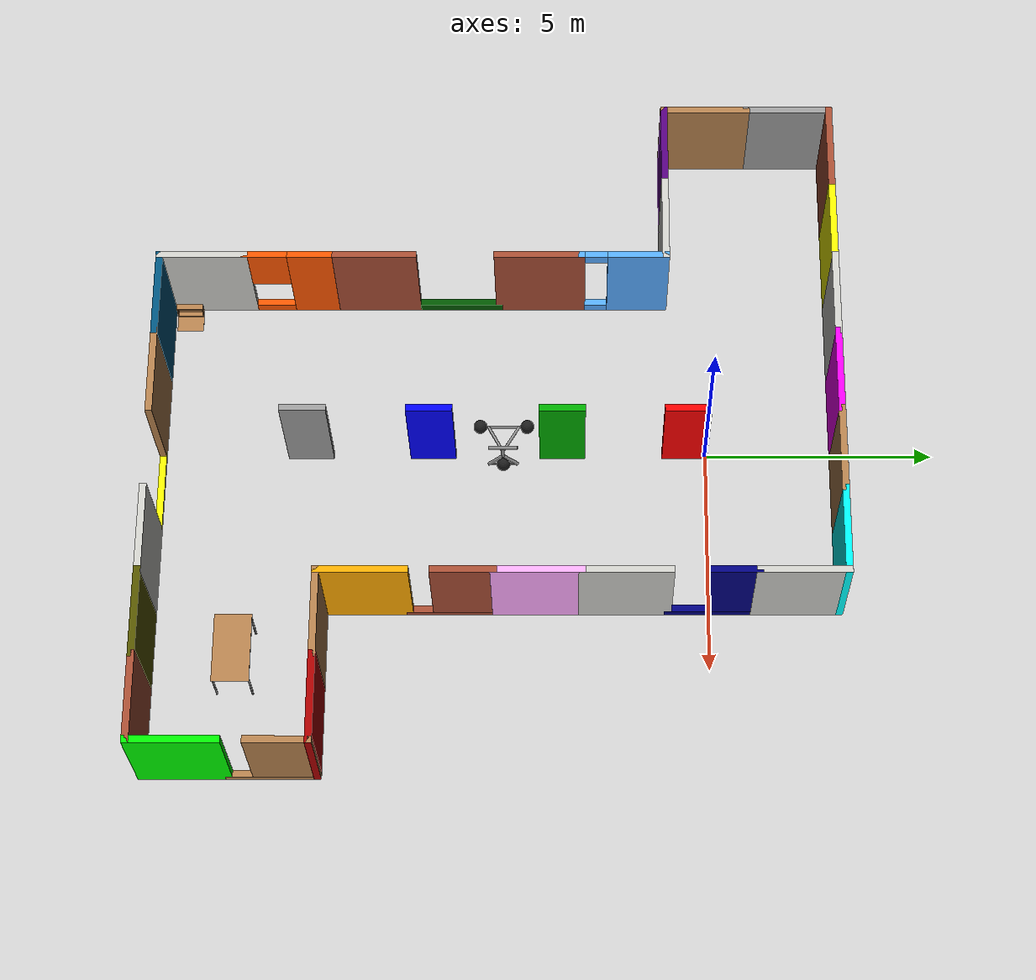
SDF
<sdf version="1.6">
 <world name="default">
  <light name="sun" type="directional">
   <pose>0 0 10 0 -0 0</pose>
   <diffuse>0.8 0.8 0.8 1</diffuse>
   <specular>0.2 0.2 0.2 1</specular>
   <attenuation>
    <range>1000</range>
    <constant>0.9</constant>
    <linear>0.01</linear>
    <quadratic>0.001</quadratic>
   </attenuation>
   <direction>-0.5 0.1 -0.9</direction>
  </light>
  <model name="ground_plane">
   <static>1</static>
   <link name="link">
    <collision name="collision">
     <geometry><plane><normal>0 0 1</normal><size>100 100</size></plane></geometry>
     <surface>
      <contact><collide_bitmask>65535</collide_bitmask></contact>
      <friction><ode><mu>100</mu><mu2>50</mu2></ode></friction>
     </surface>
    </collision>
    <visual name="visual">
     <cast_shadows>0</cast_shadows>
     <geometry><plane><normal>0 0 1</normal><size>100 100</size></plane></geometry>
     <material>
      <script><uri>file://media/materials/scripts/gazebo.material</uri><name>Gazebo/Grey</name></script>
     </material>
    </visual>
   </link>
  </model>
  <gravity>0 0 -9.8</gravity>
  <magnetic_field>6e-06 2.3e-05 -4.2e-05</magnetic_field>
  <atmosphere type="adiabatic"/>
  <physics name="default_physics" default="0" type="ode">
   <max_step_size>0.001</max_step_size>
   <real_time_factor>1</real_time_factor>
   <real_time_update_rate>1000</real_time_update_rate>
  </physics>
  <scene><ambient>0.4 0.4 0.4 1</ambient><background>0.7 0.7 0.7 1</background><shadows>1</shadows></scene>
  <spherical_coordinates>
   <surface_model>EARTH_WGS84</surface_model>
   <latitude_deg>0</latitude_deg>
   <longitude_deg>0</longitude_deg>
   <elevation>0</elevation>
   <heading_deg>0</heading_deg>
  </spherical_coordinates>
  <model name="funhouse">
   <pose>-0.04 -4.58 0 0 -0 0</pose>
   <link name="Wall_10">
    <collision name="Wall_10_Collision">
     <geometry><box><size>2 0.15 2.5</size></box></geometry>
     <pose>0 0 1.25 0 -0 0</pose>
    </collision>
    <visual name="Wall_10_Visual">
     <pose>0 0 1.25 0 -0 0</pose>
     <geometry><box><size>2 0.15 2.5</size></box></geometry>
     <material>
      <script><uri>file://media/materials/scripts/gazebo.material</uri><name>Gazebo/Bricks</name></script>
      <ambient>1 1 1 1</ambient>
     </material>
     <meta><layer>0</layer></meta>
    </visual>
    <pose>-3.7 -2.775 0 0 0 -1.5708</pose>
   </link>
   <link name="Wall_11">
    <pose>-3.7 -4.625 0 0 0 -1.5708</pose>
    <visual name="Wall_11_Visual_0">
     <pose>-0.504071 0 1.25 0 -0 0</pose>
     <geometry><box><size>0.991858 0.15 2.5</size></box></geometry>
     <material>
      <script><uri>file://media/materials/scripts/gazebo.material</uri><name>Gazebo/Grey</name></script>
      <ambient>1 0.333333 0 1</ambient>
     </material>
     <meta><layer>0</layer></meta>
    </visual>
    <collision name="Wall_11_Collision_0">
     <geometry><box><size>0.991858 0.15 2.5</size></box></geometry>
     <pose>-0.504071 0 1.25 0 -0 0</pose>
    </collision>
    <visual name="Wall_11_Visual_1">
     <pose>0.495929 0 0.125 0 -0 0</pose>
     <geometry><box><size>1.00814 0.15 0.25</size></box></geometry>
     <material>
      <script><uri>file://media/materials/scripts/gazebo.material</uri><name>Gazebo/Grey</name></script>
      <ambient>1 0.333333 0 1</ambient>
     </material>
     <meta><layer>0</layer></meta>
    </visual>
    <collision name="Wall_11_Collision_1">
     <geometry><box><size>1.00814 0.15 0.25</size></box></geometry>
     <pose>0.495929 0 0.125 0 -0 0</pose>
    </collision>
    <visual name="Wall_11_Visual_2">
     <pose>0.995929 0 1.375 0 -0 0</pose>
     <geometry><box><size>0.008142 0.15 2.25</size></box></geometry>
     <material>
      <script><uri>file://media/materials/scripts/gazebo.material</uri><name>Gazebo/Grey</name></script>
      <ambient>1 0.333333 0 1</ambient>
     </material>
     <meta><layer>0</layer></meta>
    </visual>
    <collision name="Wall_11_Collision_2">
     <geometry><box><size>0.008142 0.15 2.25</size></box></geometry>
     <pose>0.995929 0 1.375 0 -0 0</pose>
    </collision>
    <visual name="Wall_11_Visual_3">
     <pose>0.491858 0 1.875 0 -0 0</pose>
     <geometry><box><size>1 0.15 1.25</size></box></geometry>
     <material>
      <script><uri>file://media/materials/scripts/gazebo.material</uri><name>Gazebo/Grey</name></script>
      <ambient>1 0.333333 0 1</ambient>
     </material>
     <meta><layer>0</layer></meta>
    </visual>
    <collision name="Wall_11_Collision_3">
     <geometry><box><size>1 0.15 1.25</size></box></geometry>
     <pose>0.491858 0 1.875 0 -0 0</pose>
    </collision>
   </link>
   <link name="Wall_13">
    <collision name="Wall_13_Collision">
     <geometry><box><size>2 0.15 2.5</size></box></geometry>
     <pose>0 0 1.25 0 -0 0</pose>
    </collision>
    <visual name="Wall_13_Visual">
     <pose>0 0 1.25 0 -0 0</pose>
     <geometry><box><size>2 0.15 2.5</size></box></geometry>
     <material>
      <script><uri>file://media/materials/scripts/gazebo.material</uri><name>Gazebo/CeilingTiled</name></script>
      <ambient>1 1 1 1</ambient>
     </material>
     <meta><layer>0</layer></meta>
    </visual>
    <pose>-3.7 -6.475 0 0 0 -1.5708</pose>
   </link>
   <link name="Wall_14">
    <collision name="Wall_14_Collision">
     <geometry><box><size>2 0.15 2.5</size></box></geometry>
     <pose>0 0 1.25 0 -0 0</pose>
    </collision>
    <visual name="Wall_14_Visual">
     <pose>0 0 1.25 0 -0 0</pose>
     <geometry><box><size>2 0.15 2.5</size></box></geometry>
     <material>
      <script><uri>file://media/materials/scripts/gazebo.material</uri><name>Gazebo/Grey</name></script>
      <ambient>0 0.333333 0.498039 1</ambient>
     </material>
     <meta><layer>0</layer></meta>
    </visual>
    <pose>-2.775 -7.4 0 0 -0 0</pose>
   </link>
   <link name="Wall_15">
    <collision name="Wall_15_Collision">
     <geometry><box><size>2 0.15 2.5</size></box></geometry>
     <pose>0 0 1.25 0 -0 0</pose>
    </collision>
    <visual name="Wall_15_Visual">
     <pose>0 0 1.25 0 -0 0</pose>
     <geometry><box><size>2 0.15 2.5</size></box></geometry>
     <material>
      <script><uri>file://media/materials/scripts/gazebo.material</uri><name>Gazebo/Wood</name></script>
      <ambient>1 1 1 1</ambient>
     </material>
     <meta><layer>0</layer></meta>
    </visual>
    <pose>-0.925 -7.4 0 0 -0 0</pose>
   </link>
   <link name="Wall_18">
    <pose>0.925 -7.4 0 0 -0 0</pose>
    <visual name="Wall_18_Visual_0">
     <pose>0 0 0.05 0 -0 0</pose>
     <geometry><box><size>2 0.15 0.1</size></box></geometry>
     <material>
      <script><uri>file://media/materials/scripts/gazebo.material</uri><name>Gazebo/Grey</name></script>
      <ambient>1 1 0 1</ambient>
     </material>
     <meta><layer>0</layer></meta>
    </visual>
    <collision name="Wall_18_Collision_0">
     <geometry><box><size>2 0.15 0.1</size></box></geometry>
     <pose>0 0 0.05 0 -0 0</pose>
    </collision>
   </link>
   <link name="Wall_19">
    <collision name="Wall_19_Collision">
     <geometry><box><size>2 0.15 2.5</size></box></geometry>
     <pose>0 0 1.25 0 -0 0</pose>
    </collision>
    <visual name="Wall_19_Visual">
     <pose>0 0 1.25 0 -0 0</pose>
     <geometry><box><size>2 0.15 2.5</size></box></geometry>
     <material>
      <script><uri>file://media/materials/scripts/gazebo.material</uri><name>Gazebo/CeilingTiled</name></script>
      <ambient>1 1 1 1</ambient>
     </material>
     <meta><layer>0</layer></meta>
    </visual>
    <pose>2.775 -7.4 0 0 -0 0</pose>
   </link>
   <link name="Wall_22">
    <collision name="Wall_22_Collision">
     <geometry><box><size>2 0.15 2.5</size></box></geometry>
     <pose>0 0 1.25 0 -0 0</pose>
    </collision>
    <visual name="Wall_22_Visual">
     <pose>0 0 1.25 0 -0 0</pose>
     <geometry><box><size>2 0.15 2.5</size></box></geometry>
     <material>
      <script><uri>file://media/materials/scripts/gazebo.material</uri><name>Gazebo/Grey</name></script>
      <ambient>1 0.666667 0 1</ambient>
     </material>
     <meta><layer>0</layer></meta>
    </visual>
    <pose>3.7 -2.775 0 0 -0 1.5708</pose>
   </link>
   <link name="Wall_23">
    <pose>3.7 -0.925 0 0 -0 1.5708</pose>
    <visual name="Wall_23_Visual_0">
     <pose>0 0 0.075 0 -0 0</pose>
     <geometry><box><size>2 0.15 0.15</size></box></geometry>
     <material>
      <script><uri>file://media/materials/scripts/gazebo.material</uri><name>Gazebo/Bricks</name></script>
      <ambient>1 1 1 1</ambient>
     </material>
     <meta><layer>0</layer></meta>
    </visual>
    <collision name="Wall_23_Collision_0">
     <geometry><box><size>2 0.15 0.15</size></box></geometry>
     <pose>0 0 0.075 0 -0 0</pose>
    </collision>
    <visual name="Wall_23_Visual_1">
     <pose>0.290707 0 1.325 0 -0 0</pose>
     <geometry><box><size>1.41859 0.15 2.35</size></box></geometry>
     <material>
      <script><uri>file://media/materials/scripts/gazebo.material</uri><name>Gazebo/Bricks</name></script>
      <ambient>1 1 1 1</ambient>
     </material>
     <meta><layer>0</layer></meta>
    </visual>
    <collision name="Wall_23_Collision_1">
     <geometry><box><size>1.41859 0.15 2.35</size></box></geometry>
     <pose>0.290707 0 1.325 0 -0 0</pose>
    </collision>
   </link>
   <link name="Wall_24">
    <collision name="Wall_24_Collision">
     <geometry><box><size>2 0.15 2.5</size></box></geometry>
     <pose>0 0 1.25 0 -0 0</pose>
    </collision>
    <visual name="Wall_24_Visual">
     <pose>0 0 1.25 0 -0 0</pose>
     <geometry><box><size>2 0.15 2.5</size></box></geometry>
     <material>
      <script><uri>file://media/materials/scripts/gazebo.material</uri><name>Gazebo/Grey</name></script>
      <ambient>1 0.666667 1 1</ambient>
     </material>
     <meta><layer>0</layer></meta>
    </visual>
    <pose>3.7 0.925 0 0 -0 1.5708</pose>
   </link>
   <link name="Wall_25">
    <collision name="Wall_25_Collision">
     <geometry><box><size>2 0.15 2.5</size></box></geometry>
     <pose>0 0 1.25 0 -0 0</pose>
    </collision>
    <visual name="Wall_25_Visual">
     <pose>0 0 1.25 0 -0 0</pose>
     <geometry><box><size>2 0.15 2.5</size></box></geometry>
     <material>
      <script><uri>file://media/materials/scripts/gazebo.material</uri><name>Gazebo/CeilingTiled</name></script>
      <ambient>1 1 1 1</ambient>
     </material>
     <meta><layer>0</layer></meta>
    </visual>
    <pose>3.7 2.775 0 0 -0 1.5708</pose>
   </link>
   <link name="Wall_26">
    <pose>3.7 4.625 0 0 -0 1.5708</pose>
    <visual name="Wall_26_Visual_0">
     <pose>0 0 0.11 0 -0 0</pose>
     <geometry><box><size>2 0.15 0.22</size></box></geometry>
     <material>
      <script><uri>file://media/materials/scripts/gazebo.material</uri><name>Gazebo/Grey</name></script>
      <ambient>0 0 0.498039 1</ambient>
     </material>
     <meta><layer>0</layer></meta>
    </visual>
    <collision name="Wall_26_Collision_0">
     <geometry><box><size>2 0.15 0.22</size></box></geometry>
     <pose>0 0 0.11 0 -0 0</pose>
    </collision>
    <visual name="Wall_26_Visual_1">
     <pose>0.435925 0 1.36 0 -0 0</pose>
     <geometry><box><size>1.12815 0.15 2.28</size></box></geometry>
     <material>
      <script><uri>file://media/materials/scripts/gazebo.material</uri><name>Gazebo/Grey</name></script>
      <ambient>0 0 0.498039 1</ambient>
     </material>
     <meta><layer>0</layer></meta>
    </visual>
    <collision name="Wall_26_Collision_1">
     <geometry><box><size>1.12815 0.15 2.28</size></box></geometry>
     <pose>0.435925 0 1.36 0 -0 0</pose>
    </collision>
   </link>
   <link name="Wall_27">
    <collision name="Wall_27_Collision">
     <geometry><box><size>2 0.15 2.5</size></box></geometry>
     <pose>0 0 1.25 0 -0 0</pose>
    </collision>
    <visual name="Wall_27_Visual">
     <pose>0 0 1.25 0 -0 0</pose>
     <geometry><box><size>2 0.15 2.5</size></box></geometry>
     <material>
      <script><uri>file://media/materials/scripts/gazebo.material</uri><name>Gazebo/CeilingTiled</name></script>
      <ambient>1 1 1 1</ambient>
     </material>
     <meta><layer>0</layer></meta>
    </visual>
    <pose>3.7 6.475 0 0 -0 1.5708</pose>
   </link>
   <link name="Wall_28">
    <collision name="Wall_28_Collision">
     <geometry><box><size>2 0.15 2.5</size></box></geometry>
     <pose>0 0 1.25 0 -0 0</pose>
    </collision>
    <visual name="Wall_28_Visual">
     <pose>0 0 1.25 0 -0 0</pose>
     <geometry><box><size>2 0.15 2.5</size></box></geometry>
     <material>
      <script><uri>file://media/materials/scripts/gazebo.material</uri><name>Gazebo/Grey</name></script>
      <ambient>0 1 1 1</ambient>
     </material>
     <meta><layer>0</layer></meta>
    </visual>
    <pose>2.775 7.4 0 0 -0 3.14159</pose>
   </link>
   <link name="Wall_29">
    <collision name="Wall_29_Collision">
     <geometry><box><size>2 0.15 2.5</size></box></geometry>
     <pose>0 0 1.25 0 -0 0</pose>
    </collision>
    <visual name="Wall_29_Visual">
     <pose>0 0 1.25 0 -0 0</pose>
     <geometry><box><size>2 0.15 2.5</size></box></geometry>
     <material>
      <script><uri>file://media/materials/scripts/gazebo.material</uri><name>Gazebo/Wood</name></script>
      <ambient>1 1 1 1</ambient>
     </material>
     <meta><layer>0</layer></meta>
    </visual>
    <pose>0.925 7.4 0 0 -0 3.14159</pose>
   </link>
   <link name="Wall_3">
    <collision name="Wall_3_Collision">
     <geometry><box><size>2 0.15 2.5</size></box></geometry>
     <pose>0 0 1.25 0 -0 0</pose>
    </collision>
    <visual name="Wall_3_Visual">
     <pose>0 0 1.25 0 -0 0</pose>
     <geometry><box><size>2 0.15 2.5</size></box></geometry>
     <material>
      <script><uri>file://media/materials/scripts/gazebo.material</uri><name>Gazebo/Grey</name></script>
      <ambient>1 0 1 1</ambient>
     </material>
     <meta><layer>0</layer></meta>
    </visual>
    <pose>-0.925 7.4 0 0 -0 3.14159</pose>
   </link>
   <link name="Wall_31">
    <collision name="Wall_31_Collision">
     <geometry><box><size>1 0.15 2.5</size></box></geometry>
     <pose>0 0 1.25 0 -0 0</pose>
    </collision>
    <visual name="Wall_31_Visual">
     <pose>0 0 1.25 0 -0 0</pose>
     <geometry><box><size>1 0.15 2.5</size></box></geometry>
     <material>
      <script><uri>file://media/materials/scripts/gazebo.material</uri><name>Gazebo/Grey</name></script>
      <ambient>1 1 1 1</ambient>
     </material>
     <meta><layer>0</layer></meta>
    </visual>
    <pose>0 -4.125 0 0 -0 1.5708</pose>
   </link>
   <link name="Wall_33">
    <collision name="Wall_33_Collision">
     <geometry><box><size>1 0.15 2.5</size></box></geometry>
     <pose>0 0 1.25 0 -0 0</pose>
    </collision>
    <visual name="Wall_33_Visual">
     <pose>0 0 1.25 0 -0 0</pose>
     <geometry><box><size>1 0.15 2.5</size></box></geometry>
     <material>
      <script><uri>file://media/materials/scripts/gazebo.material</uri><name>Gazebo/Grey</name></script>
      <ambient>0 0 1 1</ambient>
     </material>
     <meta><layer>0</layer></meta>
    </visual>
    <pose>0 -1.425 0 0 -0 1.5708</pose>
   </link>
   <link name="Wall_35">
    <collision name="Wall_35_Collision">
     <geometry><box><size>1 0.15 2.5</size></box></geometry>
     <pose>0 0 1.25 0 -0 0</pose>
    </collision>
    <visual name="Wall_35_Visual">
     <pose>0 0 1.25 0 -0 0</pose>
     <geometry><box><size>1 0.15 2.5</size></box></geometry>
     <material>
      <script><uri>file://media/materials/scripts/gazebo.material</uri><name>Gazebo/Grey</name></script>
      <ambient>1 0 0 1</ambient>
     </material>
     <meta><layer>0</layer></meta>
    </visual>
    <pose>0 4.125 0 0 0 -1.5708</pose>
   </link>
   <link name="Wall_37">
    <collision name="Wall_37_Collision">
     <geometry><box><size>1 0.15 2.5</size></box></geometry>
     <pose>0 0 1.25 0 -0 0</pose>
    </collision>
    <visual name="Wall_37_Visual">
     <pose>0 0 1.25 0 -0 0</pose>
     <geometry><box><size>1 0.15 2.5</size></box></geometry>
     <material>
      <script><uri>file://media/materials/scripts/gazebo.material</uri><name>Gazebo/Grey</name></script>
      <ambient>0 0.666667 0 1</ambient>
     </material>
     <meta><layer>0</layer></meta>
    </visual>
    <pose>0 1.425 0 0 0 -1.5708</pose>
   </link>
   <link name="Wall_39">
    <collision name="Wall_39_Collision">
     <geometry><box><size>2 0.15 2.5</size></box></geometry>
     <pose>0 0 1.25 0 -0 0</pose>
    </collision>
    <visual name="Wall_39_Visual">
     <pose>0 0 1.25 0 -0 0</pose>
     <geometry><box><size>2 0.15 2.5</size></box></geometry>
     <material>
      <script><uri>file://media/materials/scripts/gazebo.material</uri><name>Gazebo/Grey</name></script>
      <ambient>0.333333 0.333333 0 1</ambient>
     </material>
     <meta><layer>0</layer></meta>
    </visual>
    <pose>4.625 -7.4 0 0 -0 0</pose>
   </link>
   <link name="Wall_4">
    <collision name="Wall_4_Collision">
     <geometry><box><size>2 0.15 2.5</size></box></geometry>
     <pose>0 0 1.25 0 -0 0</pose>
    </collision>
    <visual name="Wall_4_Visual">
     <pose>0 0 1.25 0 -0 0</pose>
     <geometry><box><size>2 0.15 2.5</size></box></geometry>
     <material>
      <script><uri>file://media/materials/scripts/gazebo.material</uri><name>Gazebo/CeilingTiled</name></script>
      <ambient>1 1 1 1</ambient>
     </material>
     <meta><layer>0</layer></meta>
    </visual>
    <pose>-2.775 7.4 0 0 -0 3.14159</pose>
   </link>
   <link name="Wall_40">
    <collision name="Wall_40_Collision">
     <geometry><box><size>2 0.15 2.5</size></box></geometry>
     <pose>0 0 1.25 0 -0 0</pose>
    </collision>
    <visual name="Wall_40_Visual">
     <pose>0 0 1.25 0 -0 0</pose>
     <geometry><box><size>2 0.15 2.5</size></box></geometry>
     <material>
      <script><uri>file://media/materials/scripts/gazebo.material</uri><name>Gazebo/Bricks</name></script>
      <ambient>1 1 1 1</ambient>
     </material>
     <meta><layer>0</layer></meta>
    </visual>
    <pose>6.475 -7.4 0 0 -0 0</pose>
   </link>
   <link name="Wall_41">
    <collision name="Wall_41_Collision">
     <geometry><box><size>2 0.15 2.5</size></box></geometry>
     <pose>0 0 1.25 0 -0 0</pose>
    </collision>
    <visual name="Wall_41_Visual">
     <pose>0 0 1.25 0 -0 0</pose>
     <geometry><box><size>2 0.15 2.5</size></box></geometry>
     <material>
      <script><uri>file://media/materials/scripts/gazebo.material</uri><name>Gazebo/Grey</name></script>
      <ambient>0 1 0 1</ambient>
     </material>
     <meta><layer>0</layer></meta>
    </visual>
    <pose>7.4 -6.475 0 0 -0 1.5708</pose>
   </link>
   <link name="Wall_42">
    <pose>7.4 -4.625 0 0 -0 1.5708</pose>
    <visual name="Wall_42_Visual_0">
     <pose>0 0 0.1 0 -0 0</pose>
     <geometry><box><size>2 0.15 0.2</size></box></geometry>
     <material>
      <script><uri>file://media/materials/scripts/gazebo.material</uri><name>Gazebo/Wood</name></script>
      <ambient>1 1 1 1</ambient>
     </material>
     <meta><layer>0</layer></meta>
    </visual>
    <collision name="Wall_42_Collision_0">
     <geometry><box><size>2 0.15 0.2</size></box></geometry>
     <pose>0 0 0.1 0 -0 0</pose>
    </collision>
    <visual name="Wall_42_Visual_1">
     <pose>0.289974 0 1.35 0 -0 0</pose>
     <geometry><box><size>1.42005 0.15 2.3</size></box></geometry>
     <material>
      <script><uri>file://media/materials/scripts/gazebo.material</uri><name>Gazebo/Wood</name></script>
      <ambient>1 1 1 1</ambient>
     </material>
     <meta><layer>0</layer></meta>
    </visual>
    <collision name="Wall_42_Collision_1">
     <geometry><box><size>1.42005 0.15 2.3</size></box></geometry>
     <pose>0.289974 0 1.35 0 -0 0</pose>
    </collision>
   </link>
   <link name="Wall_43">
    <collision name="Wall_43_Collision">
     <geometry><box><size>2 0.15 2.5</size></box></geometry>
     <pose>0 0 1.25 0 -0 0</pose>
    </collision>
    <visual name="Wall_43_Visual">
     <pose>0 0 1.25 0 -0 0</pose>
     <geometry><box><size>2 0.15 2.5</size></box></geometry>
     <material>
      <script><uri>file://media/materials/scripts/gazebo.material</uri><name>Gazebo/Grey</name></script>
      <ambient>0.666667 0 0 1</ambient>
     </material>
     <meta><layer>0</layer></meta>
    </visual>
    <pose>6.475 -3.7 0 0 -0 3.14159</pose>
   </link>
   <link name="Wall_44">
    <collision name="Wall_44_Collision">
     <geometry><box><size>2 0.15 2.5</size></box></geometry>
     <pose>0 0 1.25 0 -0 0</pose>
    </collision>
    <visual name="Wall_44_Visual">
     <pose>0 0 1.25 0 -0 0</pose>
     <geometry><box><size>2 0.15 2.5</size></box></geometry>
     <material>
      <script><uri>file://media/materials/scripts/gazebo.material</uri><name>Gazebo/Wood</name></script>
      <ambient>1 1 1 1</ambient>
     </material>
     <meta><layer>0</layer></meta>
    </visual>
    <pose>4.625 -3.7 0 0 -0 3.14159</pose>
   </link>
   <link name="Wall_46">
    <collision name="Wall_46_Collision">
     <geometry><box><size>2 0.15 2.5</size></box></geometry>
     <pose>0 0 1.25 0 -0 0</pose>
    </collision>
    <visual name="Wall_46_Visual">
     <pose>0 0 1.25 0 -0 0</pose>
     <geometry><box><size>2 0.15 2.5</size></box></geometry>
     <material>
      <script><uri>file://media/materials/scripts/gazebo.material</uri><name>Gazebo/Grey</name></script>
      <ambient>1 1 0 1</ambient>
     </material>
     <meta><layer>0</layer></meta>
    </visual>
    <pose>-4.625 7.4 0 0 -0 3.14159</pose>
   </link>
   <link name="Wall_47">
    <collision name="Wall_47_Collision">
     <geometry><box><size>2 0.15 2.5</size></box></geometry>
     <pose>0 0 1.25 0 -0 0</pose>
    </collision>
    <visual name="Wall_47_Visual">
     <pose>0 0 1.25 0 -0 0</pose>
     <geometry><box><size>2 0.15 2.5</size></box></geometry>
     <material>
      <script><uri>file://media/materials/scripts/gazebo.material</uri><name>Gazebo/Bricks</name></script>
      <ambient>1 1 1 1</ambient>
     </material>
     <meta><layer>0</layer></meta>
    </visual>
    <pose>-6.475 7.4 0 0 -0 3.14159</pose>
   </link>
   <link name="Wall_48">
    <collision name="Wall_48_Collision">
     <geometry><box><size>2 0.15 2.5</size></box></geometry>
     <pose>0 0 1.25 0 -0 0</pose>
    </collision>
    <visual name="Wall_48_Visual">
     <pose>0 0 1.25 0 -0 0</pose>
     <geometry><box><size>2 0.15 2.5</size></box></geometry>
     <material>
      <script><uri>file://media/materials/scripts/gazebo.material</uri><name>Gazebo/Grey</name></script>
      <ambient>0 0 0 1</ambient>
     </material>
     <meta><layer>0</layer></meta>
    </visual>
    <pose>-7.4 6.475 0 0 0 -1.5708</pose>
   </link>
   <link name="Wall_49">
    <collision name="Wall_49_Collision">
     <geometry><box><size>2 0.15 2.5</size></box></geometry>
     <pose>0 0 1.25 0 -0 0</pose>
    </collision>
    <visual name="Wall_49_Visual">
     <pose>0 0 1.25 0 -0 0</pose>
     <geometry><box><size>2 0.15 2.5</size></box></geometry>
     <material>
      <script><uri>file://media/materials/scripts/gazebo.material</uri><name>Gazebo/Wood</name></script>
      <ambient>1 1 1 1</ambient>
     </material>
     <meta><layer>0</layer></meta>
    </visual>
    <pose>-7.4 4.625 0 0 0 -1.5708</pose>
   </link>
   <link name="Wall_50">
    <collision name="Wall_50_Collision">
     <geometry><box><size>2 0.15 2.5</size></box></geometry>
     <pose>0 0 1.25 0 -0 0</pose>
    </collision>
    <visual name="Wall_50_Visual">
     <pose>0 0 1.25 0 -0 0</pose>
     <geometry><box><size>2 0.15 2.5</size></box></geometry>
     <material>
      <script><uri>file://media/materials/scripts/gazebo.material</uri><name>Gazebo/Grey</name></script>
      <ambient>0.333333 0 0.498039 1</ambient>
     </material>
     <meta><layer>0</layer></meta>
    </visual>
    <pose>-6.475 3.7 0 0 -0 0</pose>
   </link>
   <link name="Wall_51">
    <collision name="Wall_51_Collision">
     <geometry><box><size>2 0.15 2.5</size></box></geometry>
     <pose>0 0 1.25 0 -0 0</pose>
    </collision>
    <visual name="Wall_51_Visual">
     <pose>0 0 1.25 0 -0 0</pose>
     <geometry><box><size>2 0.15 2.5</size></box></geometry>
     <material>
      <script><uri>file://media/materials/scripts/gazebo.material</uri><name>Gazebo/CeilingTiled</name></script>
      <ambient>1 1 1 1</ambient>
     </material>
     <meta><layer>0</layer></meta>
    </visual>
    <pose>-4.625 3.7 0 0 -0 0</pose>
   </link>
   <link name="Wall_7">
    <pose>-3.7 2.775 0 0 0 -1.5708</pose>
    <visual name="Wall_7_Visual_0">
     <pose>-0.322472 0 1.25 0 -0 0</pose>
     <geometry><box><size>1.35506 0.15 2.5</size></box></geometry>
     <material>
      <script><uri>file://media/materials/scripts/gazebo.material</uri><name>Gazebo/Grey</name></script>
      <ambient>0.333333 0.666667 1 1</ambient>
     </material>
     <meta><layer>0</layer></meta>
    </visual>
    <collision name="Wall_7_Collision_0">
     <geometry><box><size>1.35506 0.15 2.5</size></box></geometry>
     <pose>-0.322472 0 1.25 0 -0 0</pose>
    </collision>
    <visual name="Wall_7_Visual_1">
     <pose>0.677528 0 0.125 0 -0 0</pose>
     <geometry><box><size>0.644943 0.15 0.25</size></box></geometry>
     <material>
      <script><uri>file://media/materials/scripts/gazebo.material</uri><name>Gazebo/Grey</name></script>
      <ambient>0.333333 0.666667 1 1</ambient>
     </material>
     <meta><layer>0</layer></meta>
    </visual>
    <collision name="Wall_7_Collision_1">
     <geometry><box><size>0.644943 0.15 0.25</size></box></geometry>
     <pose>0.677528 0 0.125 0 -0 0</pose>
    </collision>
    <visual name="Wall_7_Visual_2">
     <pose>0.927528 0 1.375 0 -0 0</pose>
     <geometry><box><size>0.144943 0.15 2.25</size></box></geometry>
     <material>
      <script><uri>file://media/materials/scripts/gazebo.material</uri><name>Gazebo/Grey</name></script>
      <ambient>0.333333 0.666667 1 1</ambient>
     </material>
     <meta><layer>0</layer></meta>
    </visual>
    <collision name="Wall_7_Collision_2">
     <geometry><box><size>0.144943 0.15 2.25</size></box></geometry>
     <pose>0.927528 0 1.375 0 -0 0</pose>
    </collision>
    <visual name="Wall_7_Visual_3">
     <pose>0.605057 0 2.375 0 -0 0</pose>
     <geometry><box><size>0.5 0.15 0.25</size></box></geometry>
     <material>
      <script><uri>file://media/materials/scripts/gazebo.material</uri><name>Gazebo/Grey</name></script>
      <ambient>0.333333 0.666667 1 1</ambient>
     </material>
     <meta><layer>0</layer></meta>
    </visual>
    <collision name="Wall_7_Collision_3">
     <geometry><box><size>0.5 0.15 0.25</size></box></geometry>
     <pose>0.605057 0 2.375 0 -0 0</pose>
    </collision>
   </link>
   <link name="Wall_8">
    <collision name="Wall_8_Collision">
     <geometry><box><size>2 0.15 2.5</size></box></geometry>
     <pose>0 0 1.25 0 -0 0</pose>
    </collision>
    <visual name="Wall_8_Visual">
     <pose>0 0 1.25 0 -0 0</pose>
     <geometry><box><size>2 0.15 2.5</size></box></geometry>
     <material>
      <script><uri>file://media/materials/scripts/gazebo.material</uri><name>Gazebo/Bricks</name></script>
      <ambient>1 1 1 1</ambient>
     </material>
     <meta><layer>0</layer></meta>
    </visual>
    <pose>-3.7 0.925 0 0 0 -1.5708</pose>
   </link>
   <link name="Wall_9">
    <pose>-3.7 -0.925 0 0 0 -1.5708</pose>
    <visual name="Wall_9_Visual_0">
     <pose>0 0 0.125 0 -0 0</pose>
     <geometry><box><size>2 0.15 0.25</size></box></geometry>
     <material>
      <script><uri>file://media/materials/scripts/gazebo.material</uri><name>Gazebo/Grey</name></script>
      <ambient>0 0.333333 0 1</ambient>
     </material>
     <meta><layer>0</layer></meta>
    </visual>
    <collision name="Wall_9_Collision_0">
     <geometry><box><size>2 0.15 0.25</size></box></geometry>
     <pose>0 0 0.125 0 -0 0</pose>
    </collision>
   </link>
   <static>1</static>
  </model>
  <model name="table">
   <static>1</static>
   <link name="link">
    <collision name="surface">
     <pose>0 0 1 0 -0 0</pose>
     <geometry><box><size>1.5 0.8 0.03</size></box></geometry>
     <surface><friction><ode><mu>0.6</mu><mu2>0.6</mu2></ode></friction></surface>
    </collision>
    <visual name="visual1">
     <pose>0 0 1 0 -0 0</pose>
     <geometry><box><size>1.5 0.8 0.03</size></box></geometry>
     <material>
      <script><uri>file://media/materials/scripts/gazebo.material</uri><name>Gazebo/Wood</name></script>
     </material>
    </visual>
    <collision name="front_left_leg">
     <pose>0.68 0.38 0.5 0 -0 0</pose>
     <geometry><cylinder><radius>0.02</radius><length>1</length></cylinder></geometry>
    </collision>
    <visual name="front_left_leg">
     <pose>0.68 0.38 0.5 0 -0 0</pose>
     <geometry><cylinder><radius>0.02</radius><length>1</length></cylinder></geometry>
     <material>
      <script><uri>file://media/materials/scripts/gazebo.material</uri><name>Gazebo/Grey</name></script>
     </material>
    </visual>
    <collision name="front_right_leg">
     <pose>0.68 -0.38 0.5 0 -0 0</pose>
     <geometry><cylinder><radius>0.02</radius><length>1</length></cylinder></geometry>
    </collision>
    <visual name="front_right_leg">
     <pose>0.68 -0.38 0.5 0 -0 0</pose>
     <geometry><cylinder><radius>0.02</radius><length>1</length></cylinder></geometry>
     <material>
      <script><uri>file://media/materials/scripts/gazebo.material</uri><name>Gazebo/Grey</name></script>
     </material>
    </visual>
    <collision name="back_right_leg">
     <pose>-0.68 -0.38 0.5 0 -0 0</pose>
     <geometry><cylinder><radius>0.02</radius><length>1</length></cylinder></geometry>
    </collision>
    <visual name="back_right_leg">
     <pose>-0.68 -0.38 0.5 0 -0 0</pose>
     <geometry><cylinder><radius>0.02</radius><length>1</length></cylinder></geometry>
     <material>
      <script><uri>file://media/materials/scripts/gazebo.material</uri><name>Gazebo/Grey</name></script>
     </material>
    </visual>
    <collision name="back_left_leg">
     <pose>-0.68 0.38 0.5 0 -0 0</pose>
     <geometry><cylinder><radius>0.02</radius><length>1</length></cylinder></geometry>
    </collision>
    <visual name="back_left_leg">
     <pose>-0.68 0.38 0.5 0 -0 0</pose>
     <geometry><cylinder><radius>0.02</radius><length>1</length></cylinder></geometry>
     <material>
      <script><uri>file://media/materials/scripts/gazebo.material</uri><name>Gazebo/Grey</name></script>
     </material>
    </visual>
   </link>
   <pose>4.8525 -10.1191 0 0 -0 0</pose>
  </model>
  <model name="trisphere_cycle">
   <link name="frame">
    <pose>-0.408559 0 0.385023 0 -0.522021 0</pose>
    <inertial>
     <mass>10</mass>
     <inertia><ixx>0.228</ixx><iyy>0.743521</iyy><izz>0.965521</izz><ixy>0</ixy><ixz>0</ixz><iyz>0</iyz></inertia>
    </inertial>
    <collision name="axle_collision">
     <pose>-0.471335 0 0 1.5708 -0 0</pose>
     <geometry><cylinder><length>1.03923</length><radius>0.03</radius></cylinder></geometry>
    </collision>
    <visual name="axle_visual">
     <pose>-0.471335 0 0 1.5708 -0 0</pose>
     <geometry><cylinder><length>1.03923</length><radius>0.03</radius></cylinder></geometry>
     <material>
      <script><uri>file://media/materials/scripts/gazebo.material</uri><name>Gazebo/Grey</name></script>
     </material>
    </visual>
    <collision name="frame_left_collision">
     <pose>0 0.171552 0 -2.79253 1.57079 3.14159</pose>
     <geometry><cylinder><length>1.00317</length><radius>0.03</radius></cylinder></geometry>
    </collision>
    <visual name="frame_left_visual">
     <pose>0 0.171552 0 -2.79253 1.57079 3.14159</pose>
     <geometry><cylinder><length>1.00317</length><radius>0.03</radius></cylinder></geometry>
     <material>
      <script><uri>file://media/materials/scripts/gazebo.material</uri><name>Gazebo/Grey</name></script>
     </material>
    </visual>
    <collision name="frame_right_collision">
     <pose>0 -0.171552 0 2.79253 1.57079 -3.14159</pose>
     <geometry><cylinder><length>1.00317</length><radius>0.03</radius></cylinder></geometry>
    </collision>
    <visual name="frame_right_visual">
     <pose>0 -0.171552 0 2.79253 1.57079 -3.14159</pose>
     <geometry><cylinder><length>1.00317</length><radius>0.03</radius></cylinder></geometry>
     <material>
      <script><uri>file://media/materials/scripts/gazebo.material</uri><name>Gazebo/Grey</name></script>
     </material>
    </visual>
   </link>
   <link name="fork">
    <pose>0.041441 0 0.385023 0 -0.174533 0</pose>
    <inertial>
     <mass>3</mass>
     <inertia>
      <ixx>0.158203</ixx>
      <iyy>0.0583594</iyy>
      <izz>0.102656</izz>
      <ixy>0</ixy>
      <ixz>0</ixz>
      <iyz>0</iyz>
     </inertia>
    </inertial>
    <collision name="handlebars_collision">
     <pose>0 0 0.397748 1.5708 -0 0</pose>
     <geometry><cylinder><length>0.636396</length><radius>0.0375</radius></cylinder></geometry>
    </collision>
    <visual name="handlebars_visual">
     <pose>0 0 0.397748 1.5708 -0 0</pose>
     <geometry><cylinder><length>0.636396</length><radius>0.0375</radius></cylinder></geometry>
     <material>
      <script><uri>file://media/materials/scripts/gazebo.material</uri><name>Gazebo/Grey</name></script>
     </material>
    </visual>
    <collision name="headtube_collision">
     <pose>0 0 0.238649 0 -0 0</pose>
     <geometry><cylinder><length>0.318198</length><radius>0.0375</radius></cylinder></geometry>
    </collision>
    <visual name="headtube_visual">
     <pose>0 0 0.238649 0 -0 0</pose>
     <geometry><cylinder><length>0.318198</length><radius>0.0375</radius></cylinder></geometry>
     <material>
      <script><uri>file://media/materials/scripts/gazebo.material</uri><name>Gazebo/Grey</name></script>
     </material>
    </visual>
    <collision name="spindle_collision">
     <pose>0 0 -0.238649 1.5708 -0 0</pose>
     <geometry><cylinder><length>0.636396</length><radius>0.015</radius></cylinder></geometry>
    </collision>
    <visual name="spindle_visual">
     <pose>0 0 -0.238649 1.5708 -0 0</pose>
     <geometry><cylinder><length>0.636396</length><radius>0.015</radius></cylinder></geometry>
     <material>
      <script><uri>file://media/materials/scripts/gazebo.material</uri><name>Gazebo/Grey</name></script>
     </material>
    </visual>
    <collision name="fork_left_collision">
     <pose>0 0.159099 -0.07955 0.785398 -0 0</pose>
     <geometry><cylinder><length>0.45</length><radius>0.0375</radius></cylinder></geometry>
    </collision>
    <visual name="fork_left_visual">
     <pose>0 0.159099 -0.07955 0.785398 -0 0</pose>
     <geometry><cylinder><length>0.45</length><radius>0.0375</radius></cylinder></geometry>
     <material>
      <script><uri>file://media/materials/scripts/gazebo.material</uri><name>Gazebo/Grey</name></script>
     </material>
    </visual>
    <collision name="fork_right_collision">
     <pose>0 -0.159099 -0.07955 -0.785398 0 0</pose>
     <geometry><cylinder><length>0.45</length><radius>0.0375</radius></cylinder></geometry>
    </collision>
    <visual name="fork_right_visual">
     <pose>0 -0.159099 -0.07955 -0.785398 0 0</pose>
     <geometry><cylinder><length>0.45</length><radius>0.0375</radius></cylinder></geometry>
     <material>
      <script><uri>file://media/materials/scripts/gazebo.material</uri><name>Gazebo/Grey</name></script>
     </material>
    </visual>
   </link>
   <link name="wheel_front">
    <pose>0.082882 0 0.15 0 -0 0</pose>
    <inertial>
     <mass>0.5</mass>
     <inertia><ixx>0.0045</ixx><iyy>0.0045</iyy><izz>0.0045</izz><ixy>0</ixy><ixz>0</ixz><iyz>0</iyz></inertia>
    </inertial>
    <collision name="collision">
     <geometry><sphere><radius>0.15</radius></sphere></geometry>
     <surface><contact><ode><kp>1e+08</kp><kd>1</kd><min_depth>0.0005</min_depth></ode></contact></surface>
    </collision>
    <visual name="visual">
     <geometry><sphere><radius>0.15</radius></sphere></geometry>
     <material>
      <script><uri>file://media/materials/scripts/gazebo.material</uri><name>Gazebo/Black</name></script>
     </material>
    </visual>
   </link>
   <joint name="wheel_front_steer" type="revolute">
    <parent>frame</parent>
    <child>fork</child>
    <axis>
     <xyz>0 0 1</xyz>
     <limit><lower>-0.959931</lower><upper>0.959931</upper></limit>
     <use_parent_model_frame>0</use_parent_model_frame>
     <dynamics><spring_reference>0</spring_reference><spring_stiffness>0</spring_stiffness></dynamics>
    </axis>
   </joint>
   <joint name="wheel_front_spin" type="revolute">
    <parent>fork</parent>
    <child>wheel_front</child>
    <axis>
     <xyz>0 1 0</xyz>
     <use_parent_model_frame>0</use_parent_model_frame>
     <limit><lower>-1e+16</lower><upper>1e+16</upper></limit>
     <dynamics><spring_reference>0</spring_reference><spring_stiffness>0</spring_stiffness></dynamics>
    </axis>
   </joint>
   <link name="wheel_rear_left">
    <pose>-0.817118 0.519615 0.15 0 -0 0</pose>
    <inertial>
     <mass>0.5</mass>
     <inertia><ixx>0.0045</ixx><iyy>0.0045</iyy><izz>0.0045</izz><ixy>0</ixy><ixz>0</ixz><iyz>0</iyz></inertia>
    </inertial>
    <collision name="collision">
     <geometry><sphere><radius>0.15</radius></sphere></geometry>
     <surface><contact><ode><kp>1e+08</kp><kd>1</kd><min_depth>0.0005</min_depth></ode></contact></surface>
    </collision>
    <visual name="visual">
     <geometry><sphere><radius>0.15</radius></sphere></geometry>
     <material>
      <script><uri>file://media/materials/scripts/gazebo.material</uri><name>Gazebo/Black</name></script>
     </material>
    </visual>
   </link>
   <joint name="wheel_rear_left_spin" type="revolute">
    <parent>frame</parent>
    <child>wheel_rear_left</child>
    <axis>
     <xyz>0 1 0</xyz>
     <use_parent_model_frame>0</use_parent_model_frame>
     <limit><lower>-1e+16</lower><upper>1e+16</upper></limit>
     <dynamics><spring_reference>0</spring_reference><spring_stiffness>0</spring_stiffness></dynamics>
    </axis>
   </joint>
   <link name="wheel_rear_right">
    <pose>-0.817118 -0.519615 0.15 0 -0 0</pose>
    <inertial>
     <mass>0.5</mass>
     <inertia><ixx>0.0045</ixx><iyy>0.0045</iyy><izz>0.0045</izz><ixy>0</ixy><ixz>0</ixz><iyz>0</iyz></inertia>
    </inertial>
    <collision name="collision">
     <geometry><sphere><radius>0.15</radius></sphere></geometry>
     <surface><contact><ode><kp>1e+08</kp><kd>1</kd><min_depth>0.0005</min_depth></ode></contact></surface>
    </collision>
    <visual name="visual">
     <geometry><sphere><radius>0.15</radius></sphere></geometry>
     <material>
      <script><uri>file://media/materials/scripts/gazebo.material</uri><name>Gazebo/Black</name></script>
     </material>
    </visual>
   </link>
   <joint name="wheel_rear_right_spin" type="revolute">
    <parent>frame</parent>
    <child>wheel_rear_right</child>
    <axis>
     <xyz>0 1 0</xyz>
     <use_parent_model_frame>0</use_parent_model_frame>
     <limit><lower>-1e+16</lower><upper>1e+16</upper></limit>
     <dynamics><spring_reference>0</spring_reference><spring_stiffness>0</spring_stiffness></dynamics>
    </axis>
   </joint>
   <pose>0.152923 -4.45468 0 0 -0 0</pose>
  </model>
  <model name="wooden_case">
   <link name="base">
    <pose>0 0 0.024 0 -0 0</pose>
    <inertial>
     <pose>-0.022184 0 0.171592 0 -0 0</pose>
     <mass>3.96264</mass>
     <inertia>
      <ixx>0.213536</ixx>
      <ixy>0</ixy>
      <ixz>0.000779377</ixz>
      <iyy>0.0708943</iyy>
      <iyz>0</iyz>
      <izz>0.154604</izz>
     </inertia>
    </inertial>
    <collision name="collision_back">
     <pose>-0.053975 0 0.1778 0 -0 0</pose>
     <geometry><box><size>0.01905 0.5461 0.3175</size></box></geometry>
     <surface>
      <contact>
       <poissons_ratio>0.347</poissons_ratio>
       <elastic_modulus>8.8e+09</elastic_modulus>
       <ode><kp>100000</kp><kd>100</kd><max_vel>100</max_vel><min_depth>0.001</min_depth></ode>
      </contact>
      <friction>
       <torsional>
        <coefficient>1</coefficient>
        <use_patch_radius>0</use_patch_radius>
        <surface_radius>0.01</surface_radius>
       </torsional>
      </friction>
     </surface>
    </collision>
    <visual name="visual_back">
     <pose>-0.053975 0 0.1778 0 -0 0</pose>
     <geometry><box><size>0.01905 0.5461 0.3175</size></box></geometry>
     <material>
      <script><uri>file://media/materials/scripts/gazebo.material</uri><name>Gazebo/Wood</name></script>
     </material>
    </visual>
    <collision name="collision_bottom">
     <pose>0 0 0.009525 0 -0 0</pose>
     <geometry><box><size>0.127 0.5842 0.01905</size></box></geometry>
     <surface>
      <contact>
       <poissons_ratio>0.347</poissons_ratio>
       <elastic_modulus>8.8e+09</elastic_modulus>
       <ode><kp>100000</kp><kd>100</kd><max_vel>100</max_vel><min_depth>0.001</min_depth></ode>
      </contact>
      <friction>
       <torsional>
        <coefficient>1</coefficient>
        <use_patch_radius>0</use_patch_radius>
        <surface_radius>0.01</surface_radius>
       </torsional>
      </friction>
     </surface>
    </collision>
    <visual name="visual_bottom">
     <pose>0 0 0.009525 0 -0 0</pose>
     <geometry><box><size>0.127 0.5842 0.01905</size></box></geometry>
     <material>
      <script><uri>file://media/materials/scripts/gazebo.material</uri><name>Gazebo/Wood</name></script>
     </material>
    </visual>
    <collision name="collision_top">
     <pose>0 0 0.346075 0 -0 0</pose>
     <geometry><box><size>0.127 0.5842 0.01905</size></box></geometry>
     <surface>
      <contact>
       <poissons_ratio>0.347</poissons_ratio>
       <elastic_modulus>8.8e+09</elastic_modulus>
       <ode><kp>100000</kp><kd>100</kd><max_vel>100</max_vel><min_depth>0.001</min_depth></ode>
      </contact>
      <friction>
       <torsional>
        <coefficient>1</coefficient>
        <use_patch_radius>0</use_patch_radius>
        <surface_radius>0.01</surface_radius>
       </torsional>
      </friction>
     </surface>
    </collision>
    <visual name="visual_top">
     <pose>0 0 0.346075 0 -0 0</pose>
     <geometry><box><size>0.127 0.5842 0.01905</size></box></geometry>
     <material>
      <script><uri>file://media/materials/scripts/gazebo.material</uri><name>Gazebo/Wood</name></script>
     </material>
    </visual>
    <collision name="collision_left">
     <pose>0 -0.282575 0.1778 0 -0 0</pose>
     <geometry><box><size>0.127 0.01905 0.3175</size></box></geometry>
     <surface>
      <contact>
       <poissons_ratio>0.347</poissons_ratio>
       <elastic_modulus>8.8e+09</elastic_modulus>
       <ode><kp>100000</kp><kd>100</kd><max_vel>100</max_vel><min_depth>0.001</min_depth></ode>
      </contact>
      <friction>
       <torsional>
        <coefficient>1</coefficient>
        <use_patch_radius>0</use_patch_radius>
        <surface_radius>0.01</surface_radius>
       </torsional>
      </friction>
     </surface>
    </collision>
    <visual name="visual_left">
     <pose>0 -0.282575 0.1778 0 -0 0</pose>
     <geometry><box><size>0.127 0.01905 0.3175</size></box></geometry>
     <material>
      <script><uri>file://media/materials/scripts/gazebo.material</uri><name>Gazebo/Wood</name></script>
     </material>
    </visual>
    <collision name="collision_right">
     <pose>0 0.282575 0.1778 0 -0 0</pose>
     <geometry><box><size>0.127 0.01905 0.3175</size></box></geometry>
     <surface>
      <contact>
       <poissons_ratio>0.347</poissons_ratio>
       <elastic_modulus>8.8e+09</elastic_modulus>
       <ode><kp>100000</kp><kd>100</kd><max_vel>100</max_vel><min_depth>0.001</min_depth></ode>
      </contact>
      <friction>
       <torsional>
        <coefficient>1</coefficient>
        <use_patch_radius>0</use_patch_radius>
        <surface_radius>0.01</surface_radius>
       </torsional>
      </friction>
     </surface>
    </collision>
    <visual name="visual_right">
     <pose>0 0.282575 0.1778 0 -0 0</pose>
     <geometry><box><size>0.127 0.01905 0.3175</size></box></geometry>
     <material>
      <script><uri>file://media/materials/scripts/gazebo.material</uri><name>Gazebo/Wood</name></script>
     </material>
    </visual>
    <collision name="collision_block_left">
     <pose>0.0095 -0.2151 -0.012 0 -0 0</pose>
     <geometry><box><size>0.108 0.05 0.024</size></box></geometry>
     <surface>
      <contact>
       <poissons_ratio>0.347</poissons_ratio>
       <elastic_modulus>8.8e+09</elastic_modulus>
       <ode><kp>100000</kp><kd>100</kd><max_vel>100</max_vel><min_depth>0.001</min_depth></ode>
      </contact>
      <friction>
       <torsional>
        <coefficient>1</coefficient>
        <use_patch_radius>0</use_patch_radius>
        <surface_radius>0.01</surface_radius>
       </torsional>
      </friction>
     </surface>
    </collision>
    <visual name="visual_block_left">
     <pose>0.0095 -0.2151 -0.012 0 -0 0</pose>
     <geometry><box><size>0.108 0.05 0.024</size></box></geometry>
     <material>
      <script><uri>file://media/materials/scripts/gazebo.material</uri><name>Gazebo/Wood</name></script>
     </material>
    </visual>
    <collision name="collision_block_right">
     <pose>0.0095 0.2151 -0.012 0 -0 0</pose>
     <geometry><box><size>0.108 0.05 0.024</size></box></geometry>
     <surface>
      <contact>
       <poissons_ratio>0.347</poissons_ratio>
       <elastic_modulus>8.8e+09</elastic_modulus>
       <ode><kp>100000</kp><kd>100</kd><max_vel>100</max_vel><min_depth>0.001</min_depth></ode>
      </contact>
      <friction>
       <torsional>
        <coefficient>1</coefficient>
        <use_patch_radius>0</use_patch_radius>
        <surface_radius>0.01</surface_radius>
       </torsional>
      </friction>
     </surface>
    </collision>
    <visual name="visual_block_right">
     <pose>0.0095 0.2151 -0.012 0 -0 0</pose>
     <geometry><box><size>0.108 0.05 0.024</size></box></geometry>
     <material>
      <script><uri>file://media/materials/scripts/gazebo.material</uri><name>Gazebo/Wood</name></script>
     </material>
    </visual>
   </link>
   <link name="lid">
    <pose>0.243775 0 0.009525 0 -0 0</pose>
    <inertial>
     <mass>1.97874</mass>
     <inertia>
      <ixx>0.0563367</ixx>
      <ixy>0</ixy>
      <ixz>0</ixz>
      <iyy>0.020911</iyy>
      <iyz>0</iyz>
      <izz>0.0771281</izz>
     </inertia>
    </inertial>
    <collision name="collision">
     <geometry><box><size>0.3556 0.5842 0.01905</size></box></geometry>
     <surface>
      <contact>
       <poissons_ratio>0.347</poissons_ratio>
       <elastic_modulus>8.8e+09</elastic_modulus>
       <ode><kp>100000</kp><kd>100</kd><max_vel>100</max_vel><min_depth>0.001</min_depth></ode>
      </contact>
      <friction>
       <torsional>
        <coefficient>1</coefficient>
        <use_patch_radius>0</use_patch_radius>
        <surface_radius>0.01</surface_radius>
       </torsional>
      </friction>
     </surface>
    </collision>
    <visual name="visual">
     <geometry><box><size>0.3556 0.5842 0.01905</size></box></geometry>
     <material>
      <script><uri>file://media/materials/scripts/gazebo.material</uri><name>Gazebo/Wood</name></script>
     </material>
    </visual>
    <visual name="tee_nut_1">
     <pose>0.122 -0.216 0 0 -0 0</pose>
     <geometry><cylinder><radius>0.00635</radius><length>0.0192405</length></cylinder></geometry>
     <material>
      <script><uri>file://media/materials/scripts/gazebo.material</uri><name>Gazebo/Grey</name></script>
     </material>
    </visual>
    <visual name="tee_nut_2">
     <pose>0.122 -0.088 0 0 -0 0</pose>
     <geometry><cylinder><radius>0.00635</radius><length>0.0192405</length></cylinder></geometry>
     <material>
      <script><uri>file://media/materials/scripts/gazebo.material</uri><name>Gazebo/Grey</name></script>
     </material>
    </visual>
    <visual name="tee_nut_3">
     <pose>0.122 0.088 0 0 -0 0</pose>
     <geometry><cylinder><radius>0.00635</radius><length>0.0192405</length></cylinder></geometry>
     <material>
      <script><uri>file://media/materials/scripts/gazebo.material</uri><name>Gazebo/Grey</name></script>
     </material>
    </visual>
    <visual name="tee_nut_4">
     <pose>0.122 0.216 0 0 -0 0</pose>
     <geometry><cylinder><radius>0.00635</radius><length>0.0192405</length></cylinder></geometry>
     <material>
      <script><uri>file://media/materials/scripts/gazebo.material</uri><name>Gazebo/Grey</name></script>
     </material>
    </visual>
   </link>
   <joint name="lid_hinge" type="revolute">
    <pose>-0.1778 0 0.01905 0 -0 0</pose>
    <parent>base</parent>
    <child>lid</child>
    <axis>
     <xyz>0 1 0</xyz>
     <limit><upper>0.523599</upper><lower>-1.5708</lower></limit>
     <use_parent_model_frame>0</use_parent_model_frame>
     <dynamics><spring_reference>0</spring_reference><spring_stiffness>0</spring_stiffness></dynamics>
    </axis>
   </joint>
   <pose>-3.54324 -11.5737 0 0 -0 0</pose>
  </model>
  <light name="user_point_light_0" type="point">
   <pose>3.7354 -0.382767 1 0 -0 0</pose>
   <diffuse>0.5 0.5 0.5 1</diffuse>
   <specular>0.1 0.1 0.1 1</specular>
   <attenuation>
    <range>20</range>
    <constant>0.5</constant>
    <linear>0.01</linear>
    <quadratic>0.001</quadratic>
   </attenuation>
   <cast_shadows>0</cast_shadows>
   <direction>0 0 -1</direction>
  </light>
 </world>
</sdf>
